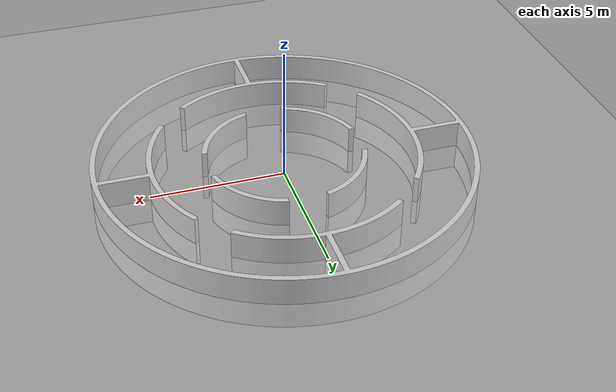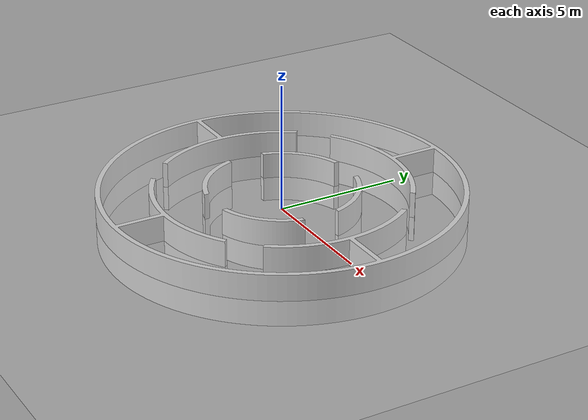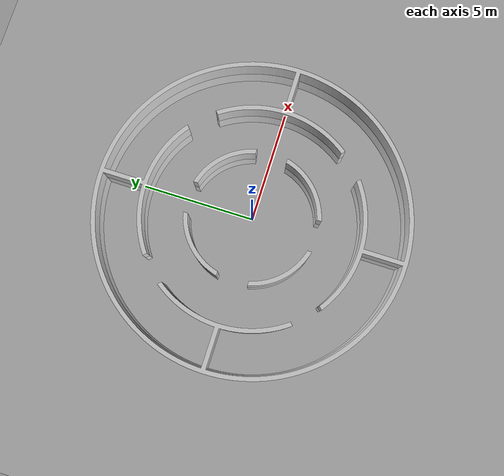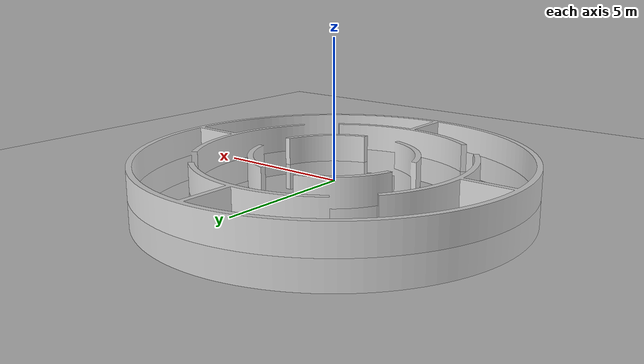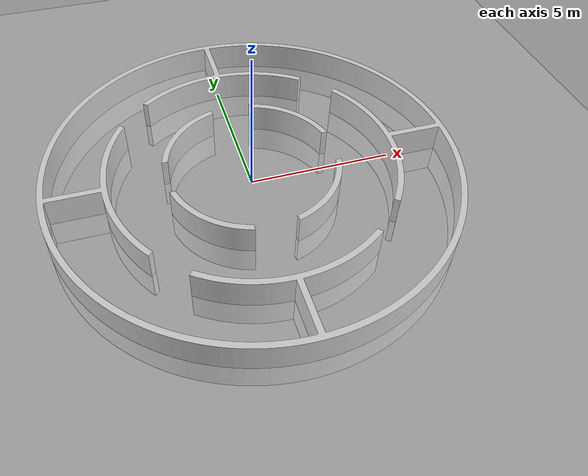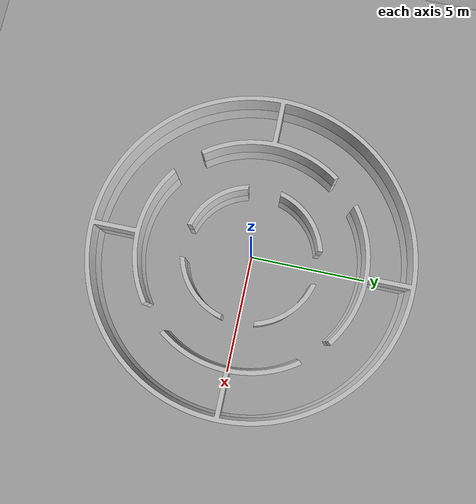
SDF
<sdf version="1.5">
    <world name="default">
        <!-- A global light source -->
        <include>
            <uri>model://sun</uri>
        </include>

        <!-- A ground plane -->
        <include>
            <uri>model://ground_plane</uri>
        </include>

        <physics type="ode">
          <real_time_update_rate>1000.0</real_time_update_rate>
          <max_step_size>0.001</max_step_size>
          <real_time_factor>1</real_time_factor>
          <ode>
            <solver>
            <type>quick</type>
            <iters>150</iters>
            <precon_iters>0</precon_iters>
            <sor>1.400000</sor>
            <use_dynamic_moi_rescaling>1</use_dynamic_moi_rescaling>
            </solver>
            <constraints>
            <cfm>0.00001</cfm>
            <erp>0.2</erp>
            <contact_max_correcting_vel>2000.000000</contact_max_correcting_vel>
            <contact_surface_layer>0.01000</contact_surface_layer>
            </constraints>
          </ode>
        </physics>

        <!-- Sample object -->
        <include>
            <uri>model://circle_env</uri>
            <pose>0 0 0 0 0 0</pose>
        </include>
        <scene>
            <ambient>0.4 0.4 0.4 1</ambient>
            <background>0.7 0.7 0.7 1</background>
            <shadows>false</shadows>
        </scene>
        <gui fullscreen='0'>
          <camera name='user_camera'>
            <pose>-11.7148 0 20.5315 -0 1.05964 0</pose>
            <view_controller>orbit</view_controller>
            <projection_type>perspective</projection_type>
          </camera>
        </gui>
    </world>
</sdf>

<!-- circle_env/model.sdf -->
<sdf version="1.5">
  <model name="circle_env">
    <static>true</static>
    <pose>0 0 0 0 0 0</pose>
    <link name="walls">
      <collision name="collision">
        <geometry>
          <mesh>
            <uri>model://circle_env/meshes/circle_env_fused.dae</uri>
          </mesh>
        </geometry>
      </collision>
      <visual name="visual">
        <geometry>
          <mesh>
            <uri>model://circle_env/meshes/circle_env_fused.dae</uri>
          </mesh>
        </geometry>
        <cast_shadows>false</cast_shadows>
      </visual>
    </link>
  </model>
</sdf>
